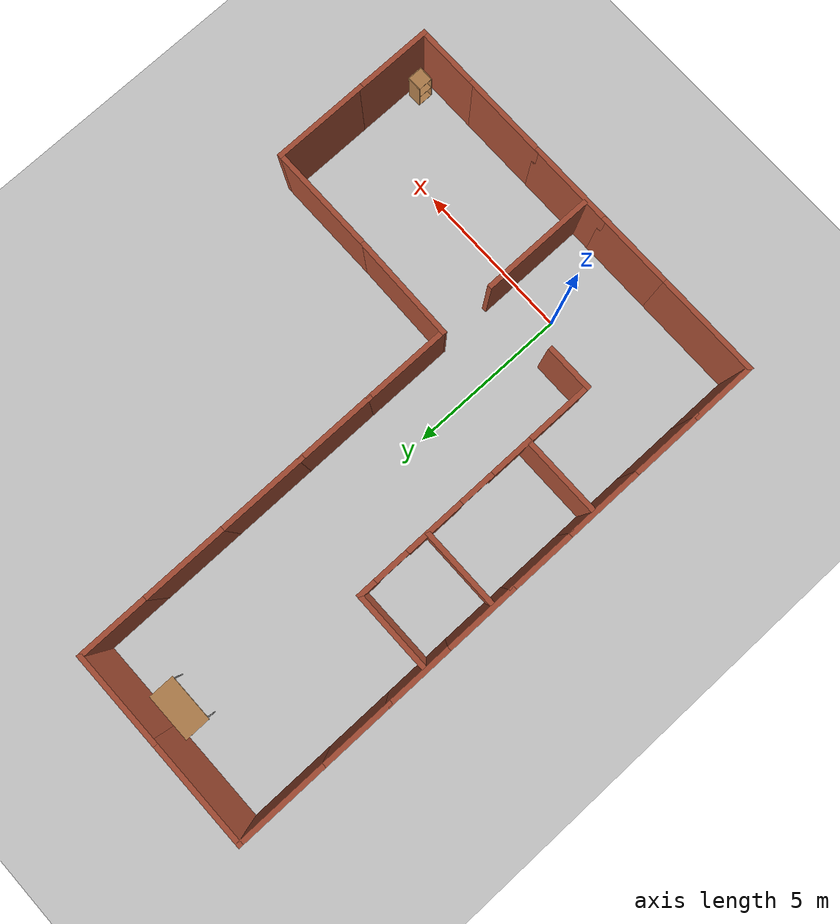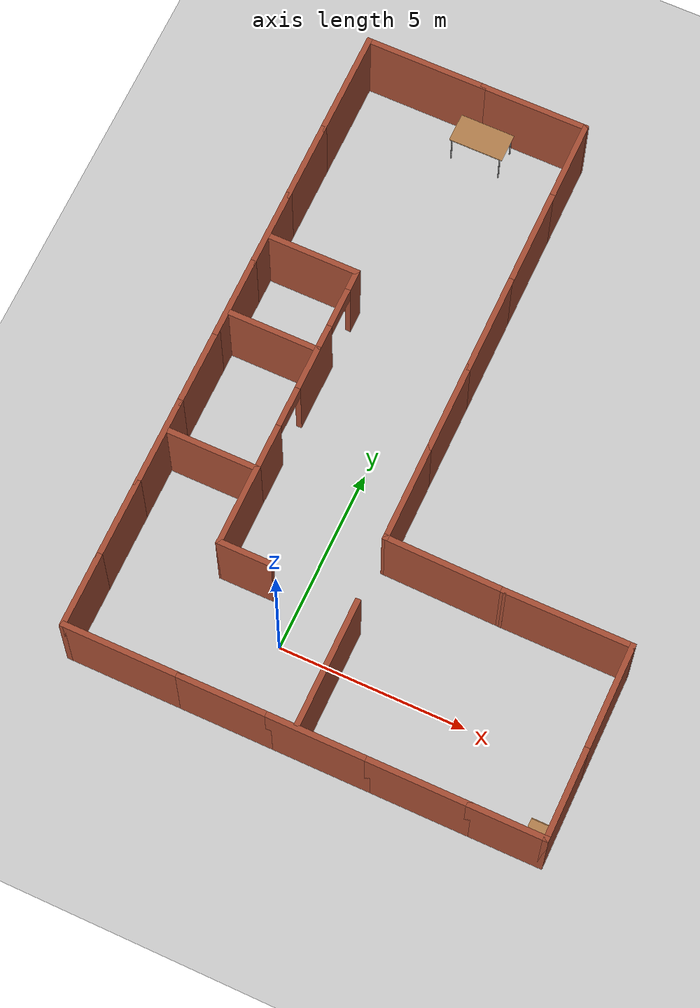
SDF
<sdf version="1.6">
 <world name="default">
  <light name="sun" type="directional">
   <pose>0 0 10 0 -0 0</pose>
   <diffuse>0.8 0.8 0.8 1</diffuse>
   <specular>0.2 0.2 0.2 1</specular>
   <attenuation>
    <range>1000</range>
    <constant>0.9</constant>
    <linear>0.01</linear>
    <quadratic>0.001</quadratic>
   </attenuation>
   <direction>-0.5 0.1 -0.9</direction>
  </light>
  <model name="ground_plane">
   <static>1</static>
   <link name="link">
    <collision name="collision">
     <geometry><plane><normal>0 0 1</normal><size>100 100</size></plane></geometry>
     <surface><friction><ode><mu>100</mu><mu2>50</mu2></ode></friction></surface>
    </collision>
    <visual name="visual">
     <cast_shadows>0</cast_shadows>
     <geometry><plane><normal>0 0 1</normal><size>100 100</size></plane></geometry>
     <material>
      <script><uri>file://media/materials/scripts/gazebo.material</uri><name>Gazebo/Grey</name></script>
     </material>
    </visual>
   </link>
  </model>
  <gravity>0 0 -9.8</gravity>
  <magnetic_field>6e-06 2.3e-05 -4.2e-05</magnetic_field>
  <atmosphere type="adiabatic"/>
  <physics name="default_physics" default="0" type="ode">
   <max_step_size>0.001</max_step_size>
   <real_time_factor>1</real_time_factor>
   <real_time_update_rate>1000</real_time_update_rate>
  </physics>
  <scene><ambient>0.4 0.4 0.4 1</ambient><background>0.7 0.7 0.7 1</background><shadows>1</shadows></scene>
  <spherical_coordinates>
   <surface_model>EARTH_WGS84</surface_model>
   <latitude_deg>0</latitude_deg>
   <longitude_deg>0</longitude_deg>
   <elevation>0</elevation>
   <heading_deg>0</heading_deg>
  </spherical_coordinates>
  <model name="Untitled">
   <pose>1.725 6.43705 0 0 -0 0</pose>
   <link name="Wall_18">
    <collision name="Wall_18_Collision">
     <geometry><box><size>2.5 0.15 2.5</size></box></geometry>
     <pose>0 0 1.25 0 -0 0</pose>
    </collision>
    <visual name="Wall_18_Visual">
     <pose>0 0 1.25 0 -0 0</pose>
     <geometry><box><size>2.5 0.15 2.5</size></box></geometry>
     <material>
      <script><uri>file://media/materials/scripts/gazebo.material</uri><name>Gazebo/Bricks</name></script>
      <ambient>1 1 1 1</ambient>
     </material>
     <meta><layer>0</layer></meta>
    </visual>
    <pose>-4.98575 2.61378 0 0 -0 0</pose>
   </link>
   <link name="Wall_19">
    <pose>-3.81075 -0.311218 0 0 -0 -1.5708</pose>
    <visual name="Wall_19_Visual_0">
     <pose>-2.69813 0 1.25 0 -0 0</pose>
     <geometry><box><size>0.603739 0.15 2.5</size></box></geometry>
     <material>
      <script><uri>file://media/materials/scripts/gazebo.material</uri><name>Gazebo/Bricks</name></script>
      <ambient>1 1 1 1</ambient>
     </material>
     <meta><layer>0</layer></meta>
    </visual>
    <collision name="Wall_19_Collision_0">
     <geometry><box><size>0.603739 0.15 2.5</size></box></geometry>
     <pose>-2.69813 0 1.25 0 -0 0</pose>
    </collision>
    <visual name="Wall_19_Visual_1">
     <pose>-0.363536 0 1.25 0 -0 0</pose>
     <geometry><box><size>1.86545 0.15 2.5</size></box></geometry>
     <material>
      <script><uri>file://media/materials/scripts/gazebo.material</uri><name>Gazebo/Bricks</name></script>
      <ambient>1 1 1 1</ambient>
     </material>
     <meta><layer>0</layer></meta>
    </visual>
    <collision name="Wall_19_Collision_1">
     <geometry><box><size>1.86545 0.15 2.5</size></box></geometry>
     <pose>-0.363536 0 1.25 0 -0 0</pose>
    </collision>
    <visual name="Wall_19_Visual_2">
     <pose>2.33459 0 1.25 0 -0 0</pose>
     <geometry><box><size>1.33081 0.15 2.5</size></box></geometry>
     <material>
      <script><uri>file://media/materials/scripts/gazebo.material</uri><name>Gazebo/Bricks</name></script>
      <ambient>1 1 1 1</ambient>
     </material>
     <meta><layer>0</layer></meta>
    </visual>
    <collision name="Wall_19_Collision_2">
     <geometry><box><size>1.33081 0.15 2.5</size></box></geometry>
     <pose>2.33459 0 1.25 0 -0 0</pose>
    </collision>
    <visual name="Wall_19_Visual_3">
     <pose>-1.84626 0 2.25 0 -0 0</pose>
     <geometry><box><size>1.1 0.15 0.5</size></box></geometry>
     <material>
      <script><uri>file://media/materials/scripts/gazebo.material</uri><name>Gazebo/Bricks</name></script>
      <ambient>1 1 1 1</ambient>
     </material>
     <meta><layer>0</layer></meta>
    </visual>
    <collision name="Wall_19_Collision_3">
     <geometry><box><size>1.1 0.15 0.5</size></box></geometry>
     <pose>-1.84626 0 2.25 0 -0 0</pose>
    </collision>
    <visual name="Wall_19_Visual_4">
     <pose>1.11919 0 2.25 0 -0 0</pose>
     <geometry><box><size>1.1 0.15 0.5</size></box></geometry>
     <material>
      <script><uri>file://media/materials/scripts/gazebo.material</uri><name>Gazebo/Bricks</name></script>
      <ambient>1 1 1 1</ambient>
     </material>
     <meta><layer>0</layer></meta>
    </visual>
    <collision name="Wall_19_Collision_4">
     <geometry><box><size>1.1 0.15 0.5</size></box></geometry>
     <pose>1.11919 0 2.25 0 -0 0</pose>
    </collision>
   </link>
   <link name="Wall_20">
    <collision name="Wall_20_Collision">
     <geometry><box><size>2.5 0.15 2.5</size></box></geometry>
     <pose>0 0 1.25 0 -0 0</pose>
    </collision>
    <visual name="Wall_20_Visual">
     <pose>0 0 1.25 0 -0 0</pose>
     <geometry><box><size>2.5 0.15 2.5</size></box></geometry>
     <material>
      <script><uri>file://media/materials/scripts/gazebo.material</uri><name>Gazebo/Bricks</name></script>
      <ambient>1 1 1 1</ambient>
     </material>
     <meta><layer>0</layer></meta>
    </visual>
    <pose>-4.98575 -3.23622 0 0 -0 3.14159</pose>
   </link>
   <link name="Wall_22">
    <collision name="Wall_22_Collision">
     <geometry><box><size>2.5 0.15 2.5</size></box></geometry>
     <pose>0 0 1.25 0 -0 0</pose>
    </collision>
    <visual name="Wall_22_Visual">
     <pose>0 0 1.25 0 -0 0</pose>
     <geometry><box><size>2.5 0.15 2.5</size></box></geometry>
     <material>
      <script><uri>file://media/materials/scripts/gazebo.material</uri><name>Gazebo/Bricks</name></script>
      <ambient>1 1 1 1</ambient>
     </material>
     <meta><layer>0</layer></meta>
    </visual>
    <pose>-5.00077 0.278799 0 0 -0 3.14159</pose>
   </link>
   <link name="Wall_24">
    <collision name="Wall_24_Collision">
     <geometry><box><size>2.25 0.15 2.5</size></box></geometry>
     <pose>0 0 1.25 0 -0 0</pose>
    </collision>
    <visual name="Wall_24_Visual">
     <pose>0 0 1.25 0 -0 0</pose>
     <geometry><box><size>2.25 0.15 2.5</size></box></geometry>
     <material>
      <script><uri>file://media/materials/scripts/gazebo.material</uri><name>Gazebo/Bricks</name></script>
      <ambient>1 1 1 1</ambient>
     </material>
     <meta><layer>0</layer></meta>
    </visual>
    <pose>-3.81075 -4.28622 0 0 -0 -1.5708</pose>
   </link>
   <link name="Wall_29">
    <collision name="Wall_29_Collision">
     <geometry><box><size>1.5 0.15 2.5</size></box></geometry>
     <pose>0 0 1.25 0 -0 0</pose>
    </collision>
    <visual name="Wall_29_Visual">
     <pose>0 0 1.25 0 -0 0</pose>
     <geometry><box><size>1.5 0.15 2.5</size></box></geometry>
     <material>
      <script><uri>file://media/materials/scripts/gazebo.material</uri><name>Gazebo/Bricks</name></script>
      <ambient>1 1 1 1</ambient>
     </material>
     <meta><layer>0</layer></meta>
    </visual>
    <pose>-3.13575 -5.33622 0 0 -0 0</pose>
   </link>
   <link name="Wall_31">
    <collision name="Wall_31_Collision">
     <geometry><box><size>3.5 0.15 2.5</size></box></geometry>
     <pose>0 0 1.25 0 -0 0</pose>
    </collision>
    <visual name="Wall_31_Visual">
     <pose>0 0 1.25 0 -0 0</pose>
     <geometry><box><size>3.5 0.15 2.5</size></box></geometry>
     <material>
      <script><uri>file://media/materials/scripts/gazebo.material</uri><name>Gazebo/Bricks</name></script>
      <ambient>1 1 1 1</ambient>
     </material>
     <meta><layer>0</layer></meta>
    </visual>
    <pose>-0.138921 -7.01281 0 0 -0 -1.5708</pose>
   </link>
   <link name="Wall_34">
    <collision name="Wall_34_Collision">
     <geometry><box><size>3 0.15 2.5</size></box></geometry>
     <pose>0 0 1.25 0 -0 0</pose>
    </collision>
    <visual name="Wall_34_Visual">
     <pose>0 0 1.25 0 -0 0</pose>
     <geometry><box><size>3 0.15 2.5</size></box></geometry>
     <material>
      <script><uri>file://media/materials/scripts/gazebo.material</uri><name>Gazebo/Bricks</name></script>
      <ambient>1 1 1 1</ambient>
     </material>
     <meta><layer>0</layer></meta>
    </visual>
    <pose>-6.3 7.375 0 0 -0 -1.5708</pose>
   </link>
   <link name="Wall_35">
    <collision name="Wall_35_Collision">
     <geometry><box><size>2.25 0.15 2.5</size></box></geometry>
     <pose>0 0 1.25 0 -0 0</pose>
    </collision>
    <visual name="Wall_35_Visual">
     <pose>0 0 1.25 0 -0 0</pose>
     <geometry><box><size>2.25 0.15 2.5</size></box></geometry>
     <material>
      <script><uri>file://media/materials/scripts/gazebo.material</uri><name>Gazebo/Bricks</name></script>
      <ambient>1 1 1 1</ambient>
     </material>
     <meta><layer>0</layer></meta>
    </visual>
    <pose>-6.3 4.9 0 0 -0 -1.5708</pose>
   </link>
   <link name="Wall_36">
    <collision name="Wall_36_Collision">
     <geometry><box><size>2.25 0.15 2.5</size></box></geometry>
     <pose>0 0 1.25 0 -0 0</pose>
    </collision>
    <visual name="Wall_36_Visual">
     <pose>0 0 1.25 0 -0 0</pose>
     <geometry><box><size>2.25 0.15 2.5</size></box></geometry>
     <material>
      <script><uri>file://media/materials/scripts/gazebo.material</uri><name>Gazebo/Bricks</name></script>
      <ambient>1 1 1 1</ambient>
     </material>
     <meta><layer>0</layer></meta>
    </visual>
    <pose>-6.3 2.8 0 0 -0 -1.5708</pose>
   </link>
   <link name="Wall_37">
    <collision name="Wall_37_Collision">
     <geometry><box><size>2.25 0.15 2.5</size></box></geometry>
     <pose>0 0 1.25 0 -0 0</pose>
    </collision>
    <visual name="Wall_37_Visual">
     <pose>0 0 1.25 0 -0 0</pose>
     <geometry><box><size>2.25 0.15 2.5</size></box></geometry>
     <material>
      <script><uri>file://media/materials/scripts/gazebo.material</uri><name>Gazebo/Bricks</name></script>
      <ambient>1 1 1 1</ambient>
     </material>
     <meta><layer>0</layer></meta>
    </visual>
    <pose>-6.3 0.7 0 0 -0 -1.5708</pose>
   </link>
   <link name="Wall_38">
    <collision name="Wall_38_Collision">
     <geometry><box><size>2.25 0.15 2.5</size></box></geometry>
     <pose>0 0 1.25 0 -0 0</pose>
    </collision>
    <visual name="Wall_38_Visual">
     <pose>0 0 1.25 0 -0 0</pose>
     <geometry><box><size>2.25 0.15 2.5</size></box></geometry>
     <material>
      <script><uri>file://media/materials/scripts/gazebo.material</uri><name>Gazebo/Bricks</name></script>
      <ambient>1 1 1 1</ambient>
     </material>
     <meta><layer>0</layer></meta>
    </visual>
    <pose>-6.3 -1.4 0 0 -0 -1.5708</pose>
   </link>
   <link name="Wall_39">
    <collision name="Wall_39_Collision">
     <geometry><box><size>2.5 0.15 2.5</size></box></geometry>
     <pose>0 0 1.25 0 -0 0</pose>
    </collision>
    <visual name="Wall_39_Visual">
     <pose>0 0 1.25 0 -0 0</pose>
     <geometry><box><size>2.5 0.15 2.5</size></box></geometry>
     <material>
      <script><uri>file://media/materials/scripts/gazebo.material</uri><name>Gazebo/Bricks</name></script>
      <ambient>1 1 1 1</ambient>
     </material>
     <meta><layer>0</layer></meta>
    </visual>
    <pose>-6.3 -3.625 0 0 -0 -1.5708</pose>
   </link>
   <link name="Wall_40">
    <collision name="Wall_40_Collision">
     <geometry><box><size>2.25 0.15 2.5</size></box></geometry>
     <pose>0 0 1.25 0 -0 0</pose>
    </collision>
    <visual name="Wall_40_Visual">
     <pose>0 0 1.25 0 -0 0</pose>
     <geometry><box><size>2.25 0.15 2.5</size></box></geometry>
     <material>
      <script><uri>file://media/materials/scripts/gazebo.material</uri><name>Gazebo/Bricks</name></script>
      <ambient>1 1 1 1</ambient>
     </material>
     <meta><layer>0</layer></meta>
    </visual>
    <pose>-6.3 -5.85 0 0 -0 -1.5708</pose>
   </link>
   <link name="Wall_41">
    <collision name="Wall_41_Collision">
     <geometry><box><size>2.05 0.15 2.5</size></box></geometry>
     <pose>0 0 1.25 0 -0 0</pose>
    </collision>
    <visual name="Wall_41_Visual">
     <pose>0 0 1.25 0 -0 0</pose>
     <geometry><box><size>2.05 0.15 2.5</size></box></geometry>
     <material>
      <script><uri>file://media/materials/scripts/gazebo.material</uri><name>Gazebo/Bricks</name></script>
      <ambient>1 1 1 1</ambient>
     </material>
     <meta><layer>0</layer></meta>
    </visual>
    <pose>-6.3 -7.85 0 0 -0 -1.5708</pose>
   </link>
   <link name="Wall_43">
    <collision name="Wall_43_Collision">
     <geometry><box><size>3.25 0.15 2.5</size></box></geometry>
     <pose>0 0 1.25 0 -0 0</pose>
    </collision>
    <visual name="Wall_43_Visual">
     <pose>0 0 1.25 0 -0 0</pose>
     <geometry><box><size>3.25 0.15 2.5</size></box></geometry>
     <material>
      <script><uri>file://media/materials/scripts/gazebo.material</uri><name>Gazebo/Bricks</name></script>
      <ambient>1 1 1 1</ambient>
     </material>
     <meta><layer>0</layer></meta>
    </visual>
    <pose>-4.75 -8.8 0 0 -0 0</pose>
   </link>
   <link name="Wall_44">
    <collision name="Wall_44_Collision">
     <geometry><box><size>2.5 0.15 2.5</size></box></geometry>
     <pose>0 0 1.25 0 -0 0</pose>
    </collision>
    <visual name="Wall_44_Visual">
     <pose>0 0 1.25 0 -0 0</pose>
     <geometry><box><size>2.5 0.15 2.5</size></box></geometry>
     <material>
      <script><uri>file://media/materials/scripts/gazebo.material</uri><name>Gazebo/Bricks</name></script>
      <ambient>1 1 1 1</ambient>
     </material>
     <meta><layer>0</layer></meta>
    </visual>
    <pose>-2.025 -8.8 0 0 -0 0</pose>
   </link>
   <link name="Wall_45">
    <collision name="Wall_45_Collision">
     <geometry><box><size>2.75 0.15 2.5</size></box></geometry>
     <pose>0 0 1.25 0 -0 0</pose>
    </collision>
    <visual name="Wall_45_Visual">
     <pose>0 0 1.25 0 -0 0</pose>
     <geometry><box><size>2.75 0.15 2.5</size></box></geometry>
     <material>
      <script><uri>file://media/materials/scripts/gazebo.material</uri><name>Gazebo/Bricks</name></script>
      <ambient>1 1 1 1</ambient>
     </material>
     <meta><layer>0</layer></meta>
    </visual>
    <pose>0.45 -8.8 0 0 -0 0</pose>
   </link>
   <link name="Wall_46">
    <collision name="Wall_46_Collision">
     <geometry><box><size>2.75 0.15 2.5</size></box></geometry>
     <pose>0 0 1.25 0 -0 0</pose>
    </collision>
    <visual name="Wall_46_Visual">
     <pose>0 0 1.25 0 -0 0</pose>
     <geometry><box><size>2.75 0.15 2.5</size></box></geometry>
     <material>
      <script><uri>file://media/materials/scripts/gazebo.material</uri><name>Gazebo/Bricks</name></script>
      <ambient>1 1 1 1</ambient>
     </material>
     <meta><layer>0</layer></meta>
    </visual>
    <pose>3.05 -8.8 0 0 -0 0</pose>
   </link>
   <link name="Wall_47">
    <collision name="Wall_47_Collision">
     <geometry><box><size>2.1 0.15 2.5</size></box></geometry>
     <pose>0 0 1.25 0 -0 0</pose>
    </collision>
    <visual name="Wall_47_Visual">
     <pose>0 0 1.25 0 -0 0</pose>
     <geometry><box><size>2.1 0.15 2.5</size></box></geometry>
     <material>
      <script><uri>file://media/materials/scripts/gazebo.material</uri><name>Gazebo/Bricks</name></script>
      <ambient>1 1 1 1</ambient>
     </material>
     <meta><layer>0</layer></meta>
    </visual>
    <pose>5.325 -8.8 0 0 -0 0</pose>
   </link>
   <link name="Wall_49">
    <collision name="Wall_49_Collision">
     <geometry><box><size>2.5 0.15 2.5</size></box></geometry>
     <pose>0 0 1.25 0 -0 0</pose>
    </collision>
    <visual name="Wall_49_Visual">
     <pose>0 0 1.25 0 -0 0</pose>
     <geometry><box><size>2.5 0.15 2.5</size></box></geometry>
     <material>
      <script><uri>file://media/materials/scripts/gazebo.material</uri><name>Gazebo/Bricks</name></script>
      <ambient>1 1 1 1</ambient>
     </material>
     <meta><layer>0</layer></meta>
    </visual>
    <pose>6.3 -7.625 0 0 -0 1.5708</pose>
   </link>
   <link name="Wall_50">
    <collision name="Wall_50_Collision">
     <geometry><box><size>3 0.15 2.5</size></box></geometry>
     <pose>0 0 1.25 0 -0 0</pose>
    </collision>
    <visual name="Wall_50_Visual">
     <pose>0 0 1.25 0 -0 0</pose>
     <geometry><box><size>3 0.15 2.5</size></box></geometry>
     <material>
      <script><uri>file://media/materials/scripts/gazebo.material</uri><name>Gazebo/Bricks</name></script>
      <ambient>1 1 1 1</ambient>
     </material>
     <meta><layer>0</layer></meta>
    </visual>
    <pose>6.3 -5.025 0 0 -0 1.5708</pose>
   </link>
   <link name="Wall_52">
    <collision name="Wall_52_Collision">
     <geometry><box><size>3.5 0.15 2.5</size></box></geometry>
     <pose>0 0 1.25 0 -0 0</pose>
    </collision>
    <visual name="Wall_52_Visual">
     <pose>0 0 1.25 0 -0 0</pose>
     <geometry><box><size>3.5 0.15 2.5</size></box></geometry>
     <material>
      <script><uri>file://media/materials/scripts/gazebo.material</uri><name>Gazebo/Bricks</name></script>
      <ambient>1 1 1 1</ambient>
     </material>
     <meta><layer>0</layer></meta>
    </visual>
    <pose>4.625 -3.6 0 0 -0 3.14159</pose>
   </link>
   <link name="Wall_53">
    <collision name="Wall_53_Collision">
     <geometry><box><size>3.3004 0.15 2.5</size></box></geometry>
     <pose>0 0 1.25 0 -0 0</pose>
    </collision>
    <visual name="Wall_53_Visual">
     <pose>0 0 1.25 0 -0 0</pose>
     <geometry><box><size>3.3004 0.15 2.5</size></box></geometry>
     <material>
      <script><uri>file://media/materials/scripts/gazebo.material</uri><name>Gazebo/Bricks</name></script>
      <ambient>1 1 1 1</ambient>
     </material>
     <meta><layer>0</layer></meta>
    </visual>
    <pose>1.375 -3.575 0 0 -0 3.12572</pose>
   </link>
   <link name="Wall_55">
    <collision name="Wall_55_Collision">
     <geometry><box><size>2.75 0.15 2.5</size></box></geometry>
     <pose>0 0 1.25 0 -0 0</pose>
    </collision>
    <visual name="Wall_55_Visual">
     <pose>0 0 1.25 0 -0 0</pose>
     <geometry><box><size>2.75 0.15 2.5</size></box></geometry>
     <material>
      <script><uri>file://media/materials/scripts/gazebo.material</uri><name>Gazebo/Bricks</name></script>
      <ambient>1 1 1 1</ambient>
     </material>
     <meta><layer>0</layer></meta>
    </visual>
    <pose>-0.2 -2.25 0 0 -0 1.5708</pose>
   </link>
   <link name="Wall_56">
    <collision name="Wall_56_Collision">
     <geometry><box><size>2.5 0.15 2.5</size></box></geometry>
     <pose>0 0 1.25 0 -0 0</pose>
    </collision>
    <visual name="Wall_56_Visual">
     <pose>0 0 1.25 0 -0 0</pose>
     <geometry><box><size>2.5 0.15 2.5</size></box></geometry>
     <material>
      <script><uri>file://media/materials/scripts/gazebo.material</uri><name>Gazebo/Bricks</name></script>
      <ambient>1 1 1 1</ambient>
     </material>
     <meta><layer>0</layer></meta>
    </visual>
    <pose>-0.2 0.225 0 0 -0 1.5708</pose>
   </link>
   <link name="Wall_57">
    <collision name="Wall_57_Collision">
     <geometry><box><size>2.75 0.15 2.5</size></box></geometry>
     <pose>0 0 1.25 0 -0 0</pose>
    </collision>
    <visual name="Wall_57_Visual">
     <pose>0 0 1.25 0 -0 0</pose>
     <geometry><box><size>2.75 0.15 2.5</size></box></geometry>
     <material>
      <script><uri>file://media/materials/scripts/gazebo.material</uri><name>Gazebo/Bricks</name></script>
      <ambient>1 1 1 1</ambient>
     </material>
     <meta><layer>0</layer></meta>
    </visual>
    <pose>-0.2 2.7 0 0 -0 1.5708</pose>
   </link>
   <link name="Wall_58">
    <collision name="Wall_58_Collision">
     <geometry><box><size>2.75 0.15 2.5</size></box></geometry>
     <pose>0 0 1.25 0 -0 0</pose>
    </collision>
    <visual name="Wall_58_Visual">
     <pose>0 0 1.25 0 -0 0</pose>
     <geometry><box><size>2.75 0.15 2.5</size></box></geometry>
     <material>
      <script><uri>file://media/materials/scripts/gazebo.material</uri><name>Gazebo/Bricks</name></script>
      <ambient>1 1 1 1</ambient>
     </material>
     <meta><layer>0</layer></meta>
    </visual>
    <pose>-0.2 5.3 0 0 -0 1.5708</pose>
   </link>
   <link name="Wall_59">
    <collision name="Wall_59_Collision">
     <geometry><box><size>2.35 0.15 2.5</size></box></geometry>
     <pose>0 0 1.25 0 -0 0</pose>
    </collision>
    <visual name="Wall_59_Visual">
     <pose>0 0 1.25 0 -0 0</pose>
     <geometry><box><size>2.35 0.15 2.5</size></box></geometry>
     <material>
      <script><uri>file://media/materials/scripts/gazebo.material</uri><name>Gazebo/Bricks</name></script>
      <ambient>1 1 1 1</ambient>
     </material>
     <meta><layer>0</layer></meta>
    </visual>
    <pose>-0.2 7.7 0 0 -0 1.5708</pose>
   </link>
   <link name="Wall_61">
    <collision name="Wall_61_Collision">
     <geometry><box><size>3 0.15 2.5</size></box></geometry>
     <pose>0 0 1.25 0 -0 0</pose>
    </collision>
    <visual name="Wall_61_Visual">
     <pose>0 0 1.25 0 -0 0</pose>
     <geometry><box><size>3 0.15 2.5</size></box></geometry>
     <material>
      <script><uri>file://media/materials/scripts/gazebo.material</uri><name>Gazebo/Bricks</name></script>
      <ambient>1 1 1 1</ambient>
     </material>
     <meta><layer>0</layer></meta>
    </visual>
    <pose>-1.625 8.8 0 0 -0 3.14159</pose>
   </link>
   <link name="Wall_62">
    <collision name="Wall_62_Collision">
     <geometry><box><size>3.4 0.15 2.5</size></box></geometry>
     <pose>0 0 1.25 0 -0 0</pose>
    </collision>
    <visual name="Wall_62_Visual">
     <pose>0 0 1.25 0 -0 0</pose>
     <geometry><box><size>3.4 0.15 2.5</size></box></geometry>
     <material>
      <script><uri>file://media/materials/scripts/gazebo.material</uri><name>Gazebo/Bricks</name></script>
      <ambient>1 1 1 1</ambient>
     </material>
     <meta><layer>0</layer></meta>
    </visual>
    <pose>-4.675 8.8 0 0 -0 3.14159</pose>
   </link>
   <static>1</static>
  </model>
  <model name="table">
   <static>1</static>
   <link name="link">
    <collision name="surface">
     <pose>0 0 1 0 -0 0</pose>
     <geometry><box><size>1.5 0.8 0.03</size></box></geometry>
     <surface><friction><ode><mu>0.6</mu><mu2>0.6</mu2></ode></friction></surface>
    </collision>
    <visual name="visual1">
     <pose>0 0 1 0 -0 0</pose>
     <geometry><box><size>1.5 0.8 0.03</size></box></geometry>
     <material>
      <script><uri>file://media/materials/scripts/gazebo.material</uri><name>Gazebo/Wood</name></script>
     </material>
    </visual>
    <collision name="front_left_leg">
     <pose>0.68 0.38 0.5 0 -0 0</pose>
     <geometry><cylinder><radius>0.02</radius><length>1</length></cylinder></geometry>
    </collision>
    <visual name="front_left_leg">
     <pose>0.68 0.38 0.5 0 -0 0</pose>
     <geometry><cylinder><radius>0.02</radius><length>1</length></cylinder></geometry>
     <material>
      <script><uri>file://media/materials/scripts/gazebo.material</uri><name>Gazebo/Grey</name></script>
     </material>
    </visual>
    <collision name="front_right_leg">
     <pose>0.68 -0.38 0.5 0 -0 0</pose>
     <geometry><cylinder><radius>0.02</radius><length>1</length></cylinder></geometry>
    </collision>
    <visual name="front_right_leg">
     <pose>0.68 -0.38 0.5 0 -0 0</pose>
     <geometry><cylinder><radius>0.02</radius><length>1</length></cylinder></geometry>
     <material>
      <script><uri>file://media/materials/scripts/gazebo.material</uri><name>Gazebo/Grey</name></script>
     </material>
    </visual>
    <collision name="back_right_leg">
     <pose>-0.68 -0.38 0.5 0 -0 0</pose>
     <geometry><cylinder><radius>0.02</radius><length>1</length></cylinder></geometry>
    </collision>
    <visual name="back_right_leg">
     <pose>-0.68 -0.38 0.5 0 -0 0</pose>
     <geometry><cylinder><radius>0.02</radius><length>1</length></cylinder></geometry>
     <material>
      <script><uri>file://media/materials/scripts/gazebo.material</uri><name>Gazebo/Grey</name></script>
     </material>
    </visual>
    <collision name="back_left_leg">
     <pose>-0.68 0.38 0.5 0 -0 0</pose>
     <geometry><cylinder><radius>0.02</radius><length>1</length></cylinder></geometry>
    </collision>
    <visual name="back_left_leg">
     <pose>-0.68 0.38 0.5 0 -0 0</pose>
     <geometry><cylinder><radius>0.02</radius><length>1</length></cylinder></geometry>
     <material>
      <script><uri>file://media/materials/scripts/gazebo.material</uri><name>Gazebo/Grey</name></script>
     </material>
    </visual>
   </link>
   <pose>-1.03287 14.6041 0 0 -0 0</pose>
  </model>
  <model name="cabinet">
   <static>1</static>
   <link name="cabinet_bottom_plate">
    <inertial>
     <pose>0 0 -1 0 -0 0</pose>
     <inertia><ixx>2.05</ixx><ixy>0</ixy><ixz>0</ixz><iyy>2.05</iyy><iyz>0</iyz><izz>2.05</izz></inertia>
     <mass>25</mass>
    </inertial>
    <collision name="cabinet_bottom_plate_geom">
     <pose>0 0 0.01 0 -0 0</pose>
     <geometry><box><size>0.45 0.45 0.02</size></box></geometry>
    </collision>
    <visual name="cabinet_bottom_plate_geom_visual">
     <pose>0 0 0.01 0 -0 0</pose>
     <geometry><box><size>0.45 0.45 0.02</size></box></geometry>
     <material>
      <script><uri>file://media/materials/scripts/gazebo.material</uri><name>Gazebo/Wood</name></script>
     </material>
    </visual>
    <collision name="cabinet_bottom_plate_geom_cabinet_back_plate">
     <pose>0.235 0 0.51 0 -0 0</pose>
     <geometry><box><size>0.02 0.45 1.02</size></box></geometry>
    </collision>
    <visual name="cabinet_bottom_plate_geom_cabinet_back_plate_visual">
     <pose>0.235 0 0.51 0 -0 0</pose>
     <geometry><box><size>0.02 0.45 1.02</size></box></geometry>
     <material>
      <script><uri>file://media/materials/scripts/gazebo.material</uri><name>Gazebo/Wood</name></script>
     </material>
    </visual>
    <collision name="cabinet_bottom_plate_geom_cabinet_left_plate">
     <pose>0 0.235 0.51 0 -0 0</pose>
     <geometry><box><size>0.45 0.02 1.02</size></box></geometry>
    </collision>
    <visual name="cabinet_bottom_plate_geom_cabinet_left_plate_visual">
     <pose>0 0.235 0.51 0 -0 0</pose>
     <geometry><box><size>0.45 0.02 1.02</size></box></geometry>
     <material>
      <script><uri>file://media/materials/scripts/gazebo.material</uri><name>Gazebo/Wood</name></script>
     </material>
    </visual>
    <collision name="cabinet_bottom_plate_geom_cabinet_middle_plate">
     <pose>0 0 0.51 0 -0 0</pose>
     <geometry><box><size>0.45 0.45 0.02</size></box></geometry>
    </collision>
    <visual name="cabinet_bottom_plate_geom_cabinet_middle_plate_visual">
     <pose>0 0 0.51 0 -0 0</pose>
     <geometry><box><size>0.45 0.45 0.02</size></box></geometry>
     <material>
      <script><uri>file://media/materials/scripts/gazebo.material</uri><name>Gazebo/Wood</name></script>
     </material>
    </visual>
    <collision name="cabinet_bottom_plate_geom_cabinet_right_plate">
     <pose>0 -0.235 0.51 0 -0 0</pose>
     <geometry><box><size>0.45 0.02 1.02</size></box></geometry>
    </collision>
    <visual name="cabinet_bottom_plate_geom_cabinet_right_plate_visual">
     <pose>0 -0.235 0.51 0 -0 0</pose>
     <geometry><box><size>0.45 0.02 1.02</size></box></geometry>
     <material>
      <script><uri>file://media/materials/scripts/gazebo.material</uri><name>Gazebo/Wood</name></script>
     </material>
    </visual>
    <collision name="cabinet_bottom_plate_geom_cabinet_top_plate">
     <pose>0 0 1.01 0 -0 0</pose>
     <geometry><box><size>0.45 0.45 0.02</size></box></geometry>
    </collision>
    <visual name="cabinet_bottom_plate_geom_cabinet_top_plate_visual">
     <pose>0 0 1.01 0 -0 0</pose>
     <geometry><box><size>0.45 0.45 0.02</size></box></geometry>
     <material>
      <script><uri>file://media/materials/scripts/gazebo.material</uri><name>Gazebo/Wood</name></script>
     </material>
    </visual>
   </link>
   <pose>7.65136 -1.88217 0 0 -0 0</pose>
  </model>
 </world>
</sdf>
